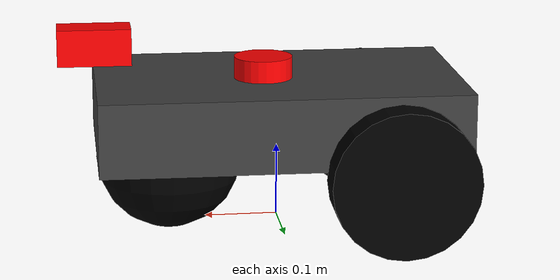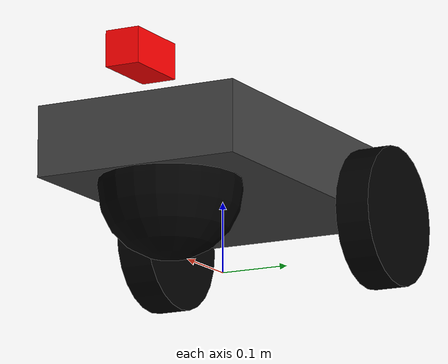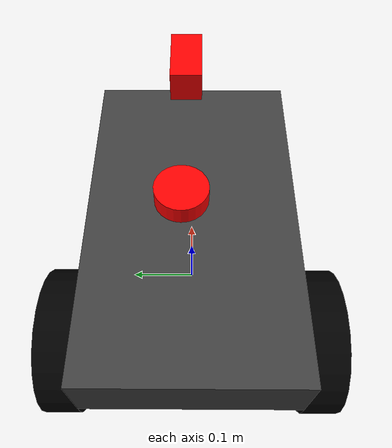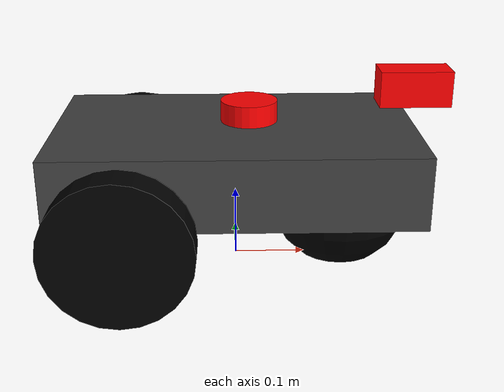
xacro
<?xml version="1.0"?>

<robot name="differential_drive_robot" xmlns:xacro="http://www.ros.org/wiki/xacro">

    <xacro:include filename="$(find neo)/urdf/robot_ros2_control.xacro"/>
    <xacro:ros2_control_block/>

    <!-- Robot Parameters -->
    <xacro:property name="PI" value="3.14159265"/>
    <xacro:property name="body_length" value="0.5"/>
    <xacro:property name="body_width" value="0.3"/>
    <xacro:property name="body_height" value="0.1"/>
    <xacro:property name="body_density" value="7850.0"/> <!-- Steel -->
    <xacro:property name="body_mass" value="${body_density * body_length * body_height * body_width}"/>
    <xacro:property name="body_inertia_x" value="${1.0/12.0 * body_mass * (body_height*body_height + body_width*body_width)}"/>
    <xacro:property name="body_inertia_y" value="${1.0/12.0 * body_mass * (body_length*body_length + body_height*body_height)}"/>
    <xacro:property name="body_inertia_z" value="${1.0/12.0 * body_mass * (body_length*body_length + body_width*body_width)}"/>

    <xacro:property name="wheel_radius" value="0.1"/>
    <xacro:property name="wheel_width" value="0.05"/>
    <xacro:property name="wheel_separation" value="${body_width + wheel_width}"/>
    <xacro:property name="wheel_offset" value="${body_length/2 - wheel_radius}"/>
    <xacro:property name="wheel_density" value="900"/> <!-- Ruber -->
    <xacro:property name="wheel_mass" value="${wheel_density * PI * wheel_radius * wheel_radius * wheel_width}"/>
    <xacro:property name="wheel_inertia_x" value="${1.0/12.0 * wheel_mass * (3*wheel_radius*wheel_radius + wheel_width*wheel_width)}"/>
    <xacro:property name="wheel_inertia_y" value="${1.0/12.0 * wheel_mass * (3*wheel_radius*wheel_radius + wheel_width*wheel_width)}"/>
    <xacro:property name="wheel_inertia_z" value="${1.0/2.0 * wheel_mass * wheel_radius * wheel_radius}"/>

    <xacro:property name="caster_radius" value="0.1"/>
    <xacro:property name="caster_offset" value="${body_length/2 - caster_radius}"/>
    <xacro:property name="caster_density" value="0.1"/>
    <xacro:property name="caster_mass" value="${caster_density * 4.0/3.0 * PI * caster_radius * caster_radius * caster_radius}"/>
    <xacro:property name="caster_inertia_x" value="${2.0/5.0 * caster_mass * caster_radius * caster_radius}"/>
    <xacro:property name="caster_inertia_y" value="${2.0/5.0 * caster_mass * caster_radius * caster_radius}"/>
    <xacro:property name="caster_inertia_z" value="${2.0/5.0 * caster_mass * caster_radius * caster_radius}"/>

    <!-- Control Parameters -->

    <!-- Links -->

    <!-- Body Link -->
    <link name="body_link">
        <visual>
            <origin xyz="0.0 0.0 0.15" rpy="0.0 0.0 0.0"/>
            <geometry>
                <box size="${body_length} ${body_width} ${body_height}"/>
            </geometry>
            <material name="body_material">
                <color rgba="0.25 0.25 0.25 1.0"/>
            </material>
        </visual>
        <collision>
            <origin xyz="0.0 0.0 0.15" rpy="0.0 0.0 0.0"/>
            <geometry>
                <box size="${body_length} ${body_width} ${body_height}"/>
            </geometry>
        </collision>
        <inertial>
            <mass value="3.0"/>
            <inertia ixx="0.1" ixy="0.0" ixz="0.0"
         iyy="0.1" iyz="0.0"
         izz="0.1"/>
            <origin xyz="0 0 0.15" rpy="0 0 0"/>
        </inertial>
    </link>

    <!-- Left Wheel -->
    <link name="left_wheel_link">
        <visual>
            <origin xyz="0.0 0.0 0.0" rpy="1.570795 0.0 0.0"/>
            <geometry>
                <cylinder radius="${wheel_radius}" length="${wheel_width}"/>
            </geometry>
            <material name="wheel_material">
                <color rgba="0.0 0.0 0.0 1.0"/>
            </material>
        </visual>
        <collision>
            <origin xyz="0.0 0.0 0.0" rpy="1.570795 0.0 0.0"/>
            <geometry>
                <cylinder radius="${wheel_radius}" length="${wheel_width}"/>
            </geometry>
        </collision>
        <inertial>
            <mass value="2"/>
            <inertia ixx="${wheel_inertia_x}" ixy="0.0" ixz="0.0" iyy="${wheel_inertia_y}" iyz="0" izz="${wheel_inertia_z}"/>
            <origin xyz="0.0 0.0 0.0" rpy="1.570795 0.0 0.0"/>
        </inertial>
    </link>

    <!-- Right Wheel -->
    <link name="right_wheel_link">
        <visual>
            <origin xyz="0.0 0.0 0.0" rpy="1.570795 0.0 0.0"/>
            <geometry>
                <cylinder radius="${wheel_radius}" length="${wheel_width}"/>
            </geometry>
            <material name="wheel_material">
                <color rgba="0.0 0.0 0.0 1.0"/>
            </material>
        </visual>
        <collision>
            <origin xyz="0.0 0.0 0.0" rpy="1.570795 0.0 0.0"/>
            <geometry>
                <cylinder radius="${wheel_radius}" length="${wheel_width}"/>
            </geometry>
        </collision>
        <inertial>
            <mass value="2"/>
            <inertia ixx="${wheel_inertia_x}" ixy="0.0" ixz="0.0" iyy="${wheel_inertia_y}" iyz="0" izz="${wheel_inertia_z}"/>
            <origin xyz="0.0 0.0 0.0" rpy="1.570795 0.0 0.0"/>
        </inertial>
    </link>

    <!-- Caster Wheel -->
    <link name="caster_link">
        <visual>
            <origin xyz="0.0 0.0 0.0" rpy="0.0 0.0 0.0"/>
            <geometry>
                <sphere radius="${caster_radius}"/>
            </geometry>
            <material name="caster_material">
                <color rgba="0.0 0.0 0.0 1.0"/>
            </material>
        </visual>
        <collision>
            <origin xyz="0.0 0.0 0.0" rpy="0.0 0.0 0.0"/>
            <geometry>
                <sphere radius="${caster_radius}"/>
            </geometry>
        </collision>
        <inertial>
            <mass value="0.5"/>
            <inertia ixx="${caster_inertia_x}" ixy="0.0" ixz="0.0" iyy="${caster_inertia_y}" iyz="0" izz="${caster_inertia_z}"/>
            <origin xyz="0 0 0" rpy="0 0 0"/>
        </inertial>
    </link>

    <link name="laser_link">
        <inertial>
            <origin xyz="0.0 0.0 0.0" rpy="0.0 0.0 0.0"/>
            <mass value="0.0"/>
            <inertia ixx="0.0" ixy="0.0" ixz="0.0" iyy="0.0" iyz="0.0" izz="0.0"/>
        </inertial>
        <visual>
            <origin xyz="0.0 0.0 0.0" rpy="0.0 0.0 0.0"/>
            <geometry>
                <cylinder radius="0.040" length="0.06"/>
            </geometry>
            <material name="">
                <color rgba="1.0 0.0 0.0 1.0"/>
            </material>
        </visual>
        <collision>
            <origin xyz="0.0 0.0 0.0" rpy="0.0 0.0 0.0"/>
            <geometry>
               <cylinder radius="0.040" length="0.06"/>
            </geometry>
        </collision>
    </link>

    <link name="camera_link">
        <inertial>
            <origin xyz="0.0 0.0 0.0" rpy="0.0 0.0 0.0"/>
            <mass value="0.0"/>
            <inertia ixx="0.0" ixy="0.0" ixz="0.0" iyy="0.0" iyz="0.0" izz="0.0"/>
        </inertial>
        <visual >
            <origin xyz="0.0 0.0 0.0" rpy="0.0 0.0 0.0"/>
            <geometry>
                <box size="0.1 0.050 0.050"/>
            </geometry>
            <material name="">
                <color rgba="1.0 0.0 0.0 1.0"/>
            </material>
        </visual>
        <collision>
            <origin xyz="0.0 0.0 0.0" rpy="0.0 0.0 0.0"/>
            <geometry>
                <box size="0.1 0.2 0.2"/>
            </geometry>
        </collision>
    </link>

    <!-- Joints -->
        <link name="base_footprint"/>

         <joint name="base_joint" type="fixed">
         <parent link="base_footprint"/>
         <child link="body_link"/>
         <origin xyz="0 0 0" rpy="0 0 0"/>
         </joint>

        <joint name="laser_joint" type="fixed">
        <parent link="body_link" />
        <child link="laser_link" />
        <origin xyz="0.02 0.015 0.20" rpy="0 0 0"/>
    </joint>

      <joint name="camera_joint" type="fixed">
        <parent link="body_link" />
        <child link="camera_link" />
        <origin xyz="0.25 0.010 0.25" rpy="0 0 0"/>
    </joint>

    <!-- Left Wheel Joint -->
    <joint name="left_wheel_joint" type="continuous">
        <origin xyz="-0.15 0.175 0.090" rpy="0 0 0"/>
        <parent link="body_link"/>
        <child link="left_wheel_link"/>
        <axis xyz="0 1 0"/>
        <limit effort="500" velocity="50.0"/>
        <dynamics damping="0.1" friction="0.1"/>
    </joint>

    <!-- Right Wheel Joint -->
    <joint name="right_wheel_joint" type="continuous">
        <origin xyz="-0.15 -0.175 0.090" rpy="0 0 0"/>
        <parent link="body_link"/>
        <child link="right_wheel_link"/>
        <axis xyz="0 1 0"/>
        <limit effort="500" velocity="50.0"/>
        <dynamics damping="0.1" friction="0.1"/>
    </joint>

    <!-- Caster Wheel Joint (fixed) -->
    <joint name="caster_joint" type="fixed">
        <origin xyz= "0.15 0 0.090" rpy="0 0 0"/>
        <parent link="body_link"/>
        <child link="caster_link"/>
    </joint>

    <!-- Gazebo Parameters -->
    <gazebo reference="body_link">
        <mu1>0.3</mu1>
        <mu2>0.3</mu2>
    </gazebo>

    <gazebo reference="right_wheel_link">
        <mu1>0.8</mu1>
        <mu2>0.8</mu2>
    </gazebo>

    <gazebo reference="left_wheel_link">
        <mu1>0.8</mu1>
        <mu2>0.8</mu2>
    </gazebo>

    <gazebo reference="caster_link">
        <mu1>0.01</mu1>
        <mu2>0.01</mu2>
    </gazebo>
    <!-- Gazebo Plugins -->
<gazebo>
  <plugin filename="gz-sim-diff-drive-system" name="gz::sim::systems::DiffDrive">
    <!-- Wheel joints -->
    <right_joint>right_wheel_joint</right_joint>
    <left_joint>left_wheel_joint</left_joint>

    <!-- Geometry -->
    <wheel_separation>0.3</wheel_separation>
    <wheel_radius>0.1</wheel_radius>

    <!-- Limits -->
    <max_linear_velocity>10.0</max_linear_velocity>
    <max_angular_velocity>10.0</max_angular_velocity>
    <max_linear_acceleration>20.0</max_linear_acceleration>
    <max_angular_acceleration>20.0</max_angular_acceleration>

    <!-- Odometry output -->
    <odom_publish_frequency>100</odom_publish_frequency>
    <topic>/cmd_vel</topic>
    <odom_topic>odom</odom_topic>
    <frame_id>odom</frame_id>
    <child_frame_id>base_footprint</child_frame_id>
    <publish_odom>true</publish_odom>
    <publish_odom_tf>true</publish_odom_tf>
  </plugin>

  <!-- Joint state publisher system -->
  <plugin filename="gz-sim-joint-state-publisher-system" name="gz::sim::systems::JointStatePublisher">
    <topic>joint_states</topic>
    <joint_name>right_wheel_joint</joint_name>
    <joint_name>left_wheel_joint</joint_name>
  </plugin>
</gazebo>

  <!-- Joint state publisher system -->

<gazebo>
  <plugin filename="gz-sim-sensors-system"
          name="gz::sim::systems::Sensors"/>
</gazebo>

<gazebo reference="base_footprint">
  <sensor name="imu_sensor" type="imu">
    <always_on>true</always_on>
    <update_rate>100</update_rate>
    <topic>/imu/data</topic>
    <plugin filename="gz-sim-imu-system" name="gz::sim::systems::Imu">
      <frame_id>base_footprint</frame_id>
    </plugin>
  </sensor>
</gazebo>

<gazebo reference="base_footprint">
  <sensor name="gps_sensor" type="gps">
    <always_on>true</always_on>
    <update_rate>10</update_rate>
    <plugin filename="gz-sim-gps-system" name="gz::sim::systems::Gps">
      <topic>/gps</topic>
      <frame_id>base_footprint</frame_id>
    </plugin>
  </sensor>
</gazebo>

<gazebo reference="base_footprint">
  <sensor name="sonar_sensor" type="ray">
    <always_on>true</always_on>
    <update_rate>20</update_rate>
    <ray>
      <min_angle>0</min_angle>
      <max_angle>0</max_angle>
      <samples>1</samples>
      <min_range>0.05</min_range>
      <max_range>5.0</max_range>
    </ray>
    <plugin filename="gz-sim-ray-system" name="gz::sim::systems::Ray">
      <topic>/sonar</topic>
      <frame_id>base_footprint</frame_id>
    </plugin>
  </sensor>
</gazebo>

<gazebo reference="base_footprint">
  <sensor name="magnetometer_sensor" type="magnetometer">
    <always_on>true</always_on>
    <update_rate>30</update_rate>
    <plugin filename="gz-sim-magnetometer-system" name="gz::sim::systems::Magnetometer">
      <topic>/magnetometer</topic>
      <frame_id>base_footprint</frame_id>
    </plugin>
  </sensor>
</gazebo>

<gazebo reference="base_footprint">
  <sensor name="depth_camera" type="camera">
    <always_on>true</always_on>
    <update_rate>30</update_rate>
    <camera name="depth">
      <horizontal_fov>1.047</horizontal_fov>
      <image>
        <width>640</width>
        <height>480</height>
        <format>R8G8B8</format>
      </image>
      <clip>
        <near>0.1</near>
        <far>10.0</far>
      </clip>
      <depth_camera/>
    </camera>
    <plugin filename="gz-sim-depth-camera-system" name="gz::sim::systems::DepthCamera">
      <topic>/camera/depth/image_raw</topic>
      <frame_id>base_footprint</frame_id>
    </plugin>
  </sensor>
</gazebo>

<gazebo reference="wheel_joint">
  <sensor name="ft_sensor" type="force_torque">
    <always_on>true</always_on>
    <update_rate>100</update_rate>
    <plugin filename="gz-sim-force-torque-system" name="gz::sim::systems::ForceTorque">
      <topic>/force_torque</topic>
      <frame_id>right_wheel_link</frame_id>
    </plugin>
  </sensor>
</gazebo>

<gazebo reference="laser_link">
        <sensor name="laser" type="gpu_lidar">
            <pose> 0 0 0 0 0 0 </pose>
            <always_on>true</always_on>
            <visualize>true</visualize>
            <update_rate>10</update_rate>
            <topic>/scan</topic>
            <gz_frame_id>laser_link</gz_frame_id>
            <lidar>
                <scan>
                    <horizontal>
                    <samples>720</samples>
                    <resolution>1</resolution>
                    <min_angle>-3.14</min_angle>
                    <max_angle>3.14</max_angle>
                    </horizontal>
                </scan>
                <range>
                    <min>0.05</min>
                    <max>10.0</max>
                    <resolution>0.01</resolution>
                </range>
                <noise>
                    <type>gaussian</type>
                    <mean>0.0</mean>
                    <stddev>0.01</stddev>
                </noise>
                <frame_id>laser_link</frame_id>
            </lidar>
            <always_on>true</always_on>
            <visualize>true</visualize>
        </sensor>
    </gazebo>

     <gazebo reference="camera_link">
        <sensor name="camera" type="camera">
            <camera>
                <horizontal_fov>1.3962634</horizontal_fov>
                <image>
                    <width>640</width>
                    <height>480</height>
                    <format>R8G8B8</format>
                </image>
                <clip>
                    <near>0.1</near>
                    <far>15</far>
                </clip>
                <noise>
                    <type>gaussian</type>
                    <mean>0.0</mean>
                    <stddev>0.007</stddev>
                </noise>
                <optical_frame_id>camera_link</optical_frame_id>
                <camera_info_topic>camera/camera_info</camera_info_topic>
            </camera>
            <always_on>1</always_on>
            <update_rate>20</update_rate>
            <visualize>true</visualize>
            <topic>camera/image_raw</topic>
        </sensor>
    </gazebo>

</robot>
